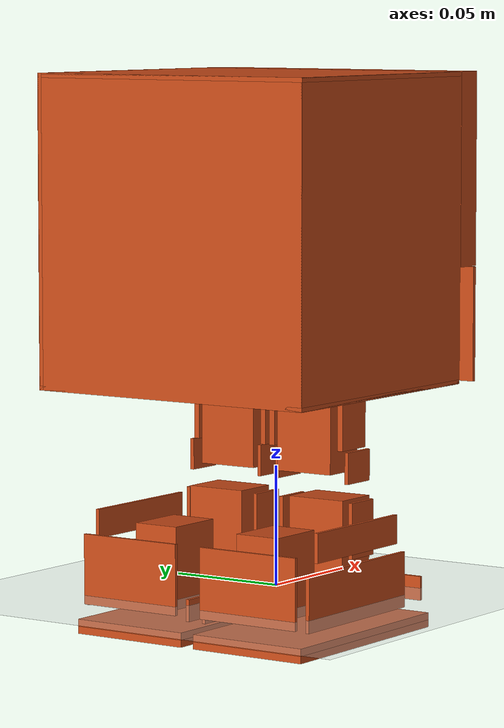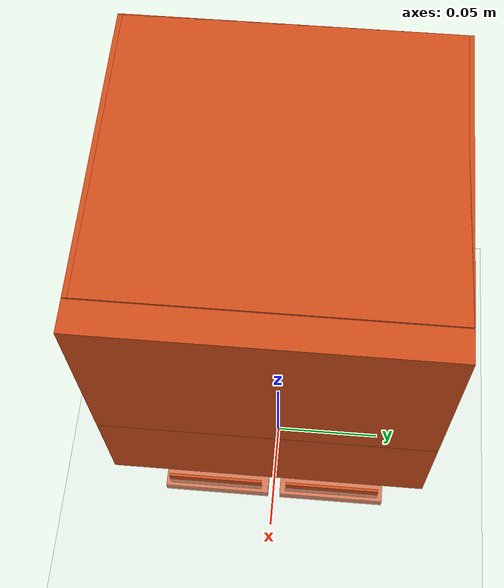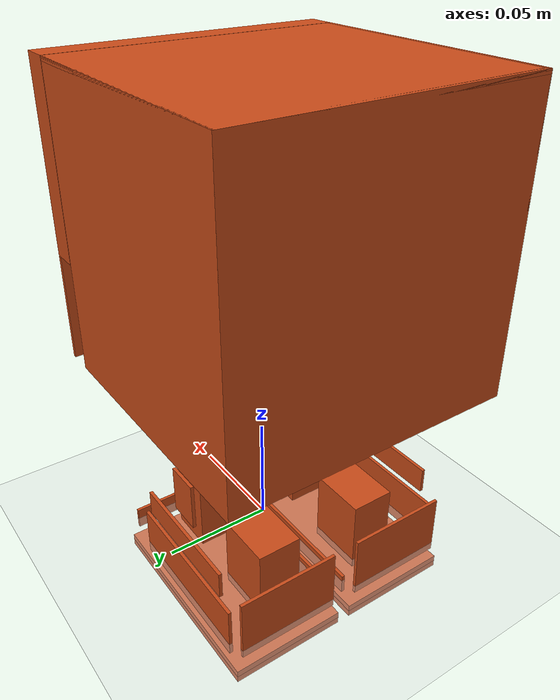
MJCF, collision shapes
<?xml version='1.0' encoding='utf-8'?>
<mujoco model="Tab5_R5_A_landscape_cube_X330_10DOF">
  <!--UNVALIDATED PHYSICS MODEL. Floating base; no weld, no root-force assistance.-->
  <!--Reduced separated collision proxies: not exact CAD shell surfaces. See collision_proxies.py. No boot is represented as a solid convex hull.-->
  <compiler angle="radian" meshdir="meshes" inertiafromgeom="false" autolimits="true" />
  <option timestep="0.001" gravity="0 0 -9.81" integrator="implicitfast" solver="Newton" iterations="50" cone="elliptic">
    <flag filterparent="enable" />
  </option>
  <visual>
    <global offwidth="1280" offheight="960" />
    <headlight diffuse=".7 .7 .7" ambient=".3 .3 .3" />
  </visual>
  <statistic center="0 0 .15" extent=".55" />
  <default>
    <default class="joint_defaults">
      <joint type="hinge" limited="true" damping="0.0015" frictionloss="0.006" armature="2e-06" />
    </default>
    <default class="collision">
      <geom contype="1" conaffinity="1" condim="3" group="3" rgba=".8 .3 .1 .35" friction="0.8 .003 .0001" solref=".004 1" solimp=".95 .99 .001" margin="0" mass="0" />
    </default>
  </default>
  <asset>
    <mesh name="body_shroud_mesh" file="body_shroud.stl" scale=".001 .001 .001" />
    <mesh name="rear_cover_mesh" file="rear_cover.stl" scale=".001 .001 .001" />
    <mesh name="Tab5_mesh" file="Tab5.stl" scale=".001 .001 .001" />
    <mesh name="face_0_mesh" file="face_0.stl" scale=".001 .001 .001" />
    <mesh name="face_1_mesh" file="face_1.stl" scale=".001 .001 .001" />
    <mesh name="face_2_mesh" file="face_2.stl" scale=".001 .001 .001" />
    <mesh name="screen_mesh" file="screen.stl" scale=".001 .001 .001" />
    <mesh name="camera_mesh" file="camera.stl" scale=".001 .001 .001" />
    <mesh name="battery_2S_reservation_mesh" file="battery_2S_reservation.stl" scale=".001 .001 .001" />
    <mesh name="dedicated_5V_converter_mesh" file="dedicated_5V_converter.stl" scale=".001 .001 .001" />
    <mesh name="TTL_interface_mesh" file="TTL_interface.stl" scale=".001 .001 .001" />
    <mesh name="cables_and_fasteners_mesh" file="cables_and_fasteners.stl" scale=".001 .001 .001" />
    <mesh name="left_hip_roll_motor_mesh" file="left_hip_roll_motor.stl" scale=".001 .001 .001" />
    <mesh name="left_fixed_roll_cradle_mesh" file="left_fixed_roll_cradle.stl" scale=".001 .001 .001" />
    <mesh name="left_roll_to_pitch_carrier_mesh" file="left_roll_to_pitch_carrier.stl" scale=".001 .001 .001" />
    <mesh name="left_hip_pitch_motor_mesh" file="left_hip_pitch_motor.stl" scale=".001 .001 .001" />
    <mesh name="left_thigh_yoke_mesh" file="left_thigh_yoke.stl" scale=".001 .001 .001" />
    <mesh name="left_knee_motor_mesh" file="left_knee_motor.stl" scale=".001 .001 .001" />
    <mesh name="left_shin_yoke_mesh" file="left_shin_yoke.stl" scale=".001 .001 .001" />
    <mesh name="left_ankle_pitch_motor_mesh" file="left_ankle_pitch_motor.stl" scale=".001 .001 .001" />
    <mesh name="left_ankle_roll_motor_mesh" file="left_ankle_roll_motor.stl" scale=".001 .001 .001" />
    <mesh name="left_ankle_gimbal_mesh" file="left_ankle_gimbal.stl" scale=".001 .001 .001" />
    <mesh name="left_foot_yoke_mesh" file="left_foot_yoke.stl" scale=".001 .001 .001" />
    <mesh name="left_boot_shell_mesh" file="left_boot_shell.stl" scale=".001 .001 .001" />
    <mesh name="left_sole_TPU_mesh" file="left_sole_TPU.stl" scale=".001 .001 .001" />
    <mesh name="right_hip_roll_motor_mesh" file="right_hip_roll_motor.stl" scale=".001 .001 .001" />
    <mesh name="right_fixed_roll_cradle_mesh" file="right_fixed_roll_cradle.stl" scale=".001 .001 .001" />
    <mesh name="right_roll_to_pitch_carrier_mesh" file="right_roll_to_pitch_carrier.stl" scale=".001 .001 .001" />
    <mesh name="right_hip_pitch_motor_mesh" file="right_hip_pitch_motor.stl" scale=".001 .001 .001" />
    <mesh name="right_thigh_yoke_mesh" file="right_thigh_yoke.stl" scale=".001 .001 .001" />
    <mesh name="right_knee_motor_mesh" file="right_knee_motor.stl" scale=".001 .001 .001" />
    <mesh name="right_shin_yoke_mesh" file="right_shin_yoke.stl" scale=".001 .001 .001" />
    <mesh name="right_ankle_pitch_motor_mesh" file="right_ankle_pitch_motor.stl" scale=".001 .001 .001" />
    <mesh name="right_ankle_roll_motor_mesh" file="right_ankle_roll_motor.stl" scale=".001 .001 .001" />
    <mesh name="right_ankle_gimbal_mesh" file="right_ankle_gimbal.stl" scale=".001 .001 .001" />
    <mesh name="right_foot_yoke_mesh" file="right_foot_yoke.stl" scale=".001 .001 .001" />
    <mesh name="right_boot_shell_mesh" file="right_boot_shell.stl" scale=".001 .001 .001" />
    <mesh name="right_sole_TPU_mesh" file="right_sole_TPU.stl" scale=".001 .001 .001" />
  </asset>
  <worldbody>
    <light pos=".3 -.4 1" dir="-.2 .2 -1" directional="true" />
    <geom name="floor" type="plane" size="2 2 .05" rgba=".89 .91 .92 1" friction="0.8 .003 .0001" condim="3" />
    <body name="base" pos="-0.011816583187 -9.18385893789e-06 0.0845815478015">
      <freejoint name="floating_base" />
      <body name="left_hip_roll" pos="-0.006 0.019 0.025">
        <joint name="left_hip_roll" axis="1 0 0" range="-0.28 0.28" class="joint_defaults" />
        <body name="left_hip_pitch" pos="0.02 0 0">
          <joint name="left_hip_pitch" axis="0 1 0" range="0.1 1.35" class="joint_defaults" />
          <body name="left_knee" pos="0 0 -0.05">
            <joint name="left_knee" axis="0 1 0" range="-1.95 -0.35" class="joint_defaults" />
            <body name="left_ankle_pitch" pos="0 0.006 -0.044">
              <joint name="left_ankle_pitch" axis="0 1 0" range="0.05 1.35" class="joint_defaults" />
              <body name="left_ankle_roll" pos="-0.026 0 -0.01">
                <joint name="left_ankle_roll" axis="1 0 0" range="-0.28 0.28" class="joint_defaults" />
                <site name="left_sole" type="box" pos="0.008 0.004 -0.022" size="0.047 0.026 0.0005" rgba="0 .7 .5 .25" group="4" />
                <inertial mass="0.06710168920947454" pos="0.00604340071633 0.00671422678767 -0.00744313920121" fullinertia="3.77056467254e-05 8.12863322653e-05 8.39357306847e-05 -1.83837919617e-07 3.21016254085e-06 -4.95972189723e-06" />
                <geom name="vis_left_foot_yoke" type="mesh" mesh="left_foot_yoke_mesh" rgba="0.28 0.34 0.36 1" contype="0" conaffinity="0" group="2" mass="0" />
                <geom name="col_left_foot_yoke_0" type="box" pos="0.008 0.004 -0.0175" size="0.047 0.026 0.0015" class="collision" />
                <geom name="vis_left_boot_shell" type="mesh" mesh="left_boot_shell_mesh" rgba="0.77 0.81 0.8 1" contype="0" conaffinity="0" group="2" mass="0" />
                <geom name="col_left_boot_shell_0" type="box" pos="0.002 0.029 0.0005" size="0.035 0.00075 0.0115" class="collision" />
                <geom name="col_left_boot_shell_1" type="box" pos="0.002 0.029 0.022" size="0.029 0.00075 0.006" class="collision" />
                <geom name="col_left_boot_shell_2" type="box" pos="0.002 -0.021 -0.008" size="0.035 0.00075 0.0045" class="collision" />
                <geom name="col_left_boot_shell_3" type="box" pos="0.054 0.004 -0.006" size="0.0007 0.023 0.005" class="collision" />
                <geom name="col_left_boot_shell_4" type="box" pos="-0.038 0.004 0.005" size="0.0007 0.023 0.0145" class="collision" />
                <geom name="vis_left_sole_TPU" type="mesh" mesh="left_sole_TPU_mesh" rgba="0.12 0.16 0.17 1" contype="0" conaffinity="0" group="2" mass="0" />
                <geom name="col_left_sole_TPU_0" type="box" pos="0.008 0.004 -0.0205" size="0.047 0.026 0.0015" class="collision" />
              </body>
              <inertial mass="0.023056416624148608" pos="-0.0366859618139 0.000427647217598 -0.00147546830583" fullinertia="4.27500089639e-06 6.41586851312e-06 5.73084345969e-06 -8.12227403335e-08 -2.22909751159e-07 -5.61061082591e-08" />
              <geom name="vis_left_ankle_roll_motor" type="mesh" mesh="left_ankle_roll_motor_mesh" rgba="0.11 0.16 0.18 1" contype="0" conaffinity="0" group="2" mass="0" />
              <geom name="col_left_ankle_roll_motor_0" type="box" pos="-0.039 0 -0.003" size="0.013 0.01 0.017" class="collision" />
              <geom name="vis_left_ankle_gimbal" type="mesh" mesh="left_ankle_gimbal_mesh" rgba="0.28 0.34 0.36 1" contype="0" conaffinity="0" group="2" mass="0" />
            </body>
            <inertial mass="0.023410050940515598" pos="0.000313662993956 0.00543197786853 -0.033360828316" fullinertia="7.08475817807e-06 5.35809447257e-06 3.38258281263e-06 2.11649184842e-08 -1.49501336436e-07 2.47803892639e-07" />
            <geom name="vis_left_shin_yoke" type="mesh" mesh="left_shin_yoke_mesh" rgba="0.28 0.34 0.36 1" contype="0" conaffinity="0" group="2" mass="0" />
            <geom name="col_left_shin_yoke_0" type="box" pos="0 -0.0145 -0.007" size="0.008 0.0008 0.0065" class="collision" />
            <geom name="col_left_shin_yoke_1" type="box" pos="0 0.0196 -0.007" size="0.008 0.0008 0.0065" class="collision" />
            <geom name="col_left_shin_yoke_2" type="box" pos="0 -0.0125 -0.0325" size="0.008 0.0008 0.0115" class="collision" />
            <geom name="col_left_shin_yoke_3" type="box" pos="0 0.0216 -0.0325" size="0.008 0.0008 0.0115" class="collision" />
            <geom name="vis_left_ankle_pitch_motor" type="mesh" mesh="left_ankle_pitch_motor_mesh" rgba="0.11 0.16 0.18 1" contype="0" conaffinity="0" group="2" mass="0" />
            <geom name="col_left_ankle_pitch_motor_0" type="box" pos="0 0.006 -0.037" size="0.01 0.013 0.017" class="collision" />
          </body>
          <inertial mass="0.029755038566515592" pos="0.000250241719007 -2.15668886457e-16 -0.0390217669833" fullinertia="9.6777213965e-06 7.55996851597e-06 4.19232559917e-06 2.64808768259e-21 -8.57905239126e-08 8.27971672693e-20" />
          <geom name="vis_left_thigh_yoke" type="mesh" mesh="left_thigh_yoke_mesh" rgba="0.28 0.34 0.36 1" contype="0" conaffinity="0" group="2" mass="0" />
          <geom name="col_left_thigh_yoke_0" type="box" pos="0 -0.0168 -0.025" size="0.0085 0.0012 0.025" class="collision" />
          <geom name="col_left_thigh_yoke_1" type="box" pos="0 0.0168 -0.025" size="0.0085 0.0012 0.025" class="collision" />
          <geom name="vis_left_knee_motor" type="mesh" mesh="left_knee_motor_mesh" rgba="0.11 0.16 0.18 1" contype="0" conaffinity="0" group="2" mass="0" />
          <geom name="col_left_knee_motor_0" type="box" pos="0 0 -0.043" size="0.01 0.013 0.017" class="collision" />
        </body>
        <inertial mass="0.02730210605957944" pos="0.0183199416856 1.26877268507e-19 0.00809677501526" fullinertia="5.2871922005e-06 4.51797586763e-06 3.49775984664e-06 -5.81654734088e-23 -1.00122336864e-07 -4.94891423789e-23" />
        <geom name="vis_left_roll_to_pitch_carrier" type="mesh" mesh="left_roll_to_pitch_carrier_mesh" rgba="0.28 0.34 0.36 1" contype="0" conaffinity="0" group="2" mass="0" />
        <geom name="col_left_roll_to_pitch_carrier_0" type="box" pos="0.0085 0 0.0075" size="0.001 0.0145 0.0185" class="collision" />
        <geom name="col_left_roll_to_pitch_carrier_1" type="box" pos="0.02 -0.0142 0.007" size="0.0125 0.0007 0.017" class="collision" />
        <geom name="col_left_roll_to_pitch_carrier_2" type="box" pos="0.02 0.0142 0.007" size="0.0125 0.0007 0.017" class="collision" />
        <geom name="col_left_roll_to_pitch_carrier_3" type="box" pos="0.02 0 0.0252" size="0.0095 0.0145 0.001" class="collision" />
        <geom name="vis_left_hip_pitch_motor" type="mesh" mesh="left_hip_pitch_motor_mesh" rgba="0.11 0.16 0.18 1" contype="0" conaffinity="0" group="2" mass="0" />
        <geom name="col_left_hip_pitch_motor_0" type="box" pos="0.02 0 0.007" size="0.01 0.013 0.017" class="collision" />
      </body>
      <body name="right_hip_roll" pos="-0.006 -0.019 0.025">
        <joint name="right_hip_roll" axis="1 0 0" range="-0.28 0.28" class="joint_defaults" />
        <body name="right_hip_pitch" pos="0.02 0 0">
          <joint name="right_hip_pitch" axis="0 1 0" range="0.1 1.35" class="joint_defaults" />
          <body name="right_knee" pos="0 0 -0.05">
            <joint name="right_knee" axis="0 1 0" range="-1.95 -0.35" class="joint_defaults" />
            <body name="right_ankle_pitch" pos="0 -0.006 -0.044">
              <joint name="right_ankle_pitch" axis="0 1 0" range="0.05 1.35" class="joint_defaults" />
              <body name="right_ankle_roll" pos="-0.026 0 -0.01">
                <joint name="right_ankle_roll" axis="1 0 0" range="-0.28 0.28" class="joint_defaults" />
                <site name="right_sole" type="box" pos="0.008 -0.004 -0.022" size="0.047 0.026 0.0005" rgba="0 .7 .5 .25" group="4" />
                <inertial mass="0.06710168920947443" pos="0.00604340071633 -0.00671422678767 -0.00744313920121" fullinertia="3.77056467254e-05 8.12863322653e-05 8.39357306847e-05 1.83837919617e-07 3.21016254085e-06 4.95972189723e-06" />
                <geom name="vis_right_foot_yoke" type="mesh" mesh="right_foot_yoke_mesh" rgba="0.28 0.34 0.36 1" contype="0" conaffinity="0" group="2" mass="0" />
                <geom name="col_right_foot_yoke_0" type="box" pos="0.008 -0.004 -0.0175" size="0.047 0.026 0.0015" class="collision" />
                <geom name="vis_right_boot_shell" type="mesh" mesh="right_boot_shell_mesh" rgba="0.77 0.81 0.8 1" contype="0" conaffinity="0" group="2" mass="0" />
                <geom name="col_right_boot_shell_0" type="box" pos="0.002 -0.029 0.0005" size="0.035 0.00075 0.0115" class="collision" />
                <geom name="col_right_boot_shell_1" type="box" pos="0.002 -0.029 0.022" size="0.029 0.00075 0.006" class="collision" />
                <geom name="col_right_boot_shell_2" type="box" pos="0.002 0.021 -0.008" size="0.035 0.00075 0.0045" class="collision" />
                <geom name="col_right_boot_shell_3" type="box" pos="0.054 -0.004 -0.006" size="0.0007 0.023 0.005" class="collision" />
                <geom name="col_right_boot_shell_4" type="box" pos="-0.038 -0.004 0.005" size="0.0007 0.023 0.0145" class="collision" />
                <geom name="vis_right_sole_TPU" type="mesh" mesh="right_sole_TPU_mesh" rgba="0.12 0.16 0.17 1" contype="0" conaffinity="0" group="2" mass="0" />
                <geom name="col_right_sole_TPU_0" type="box" pos="0.008 -0.004 -0.0205" size="0.047 0.026 0.0015" class="collision" />
              </body>
              <inertial mass="0.023056416624148608" pos="-0.0366859618139 -0.000427647217598 -0.00147546830583" fullinertia="4.27500089639e-06 6.41586851312e-06 5.73084345969e-06 8.12227403335e-08 -2.22909751159e-07 5.61061082591e-08" />
              <geom name="vis_right_ankle_roll_motor" type="mesh" mesh="right_ankle_roll_motor_mesh" rgba="0.11 0.16 0.18 1" contype="0" conaffinity="0" group="2" mass="0" />
              <geom name="col_right_ankle_roll_motor_0" type="box" pos="-0.039 0 -0.003" size="0.013 0.01 0.017" class="collision" />
              <geom name="vis_right_ankle_gimbal" type="mesh" mesh="right_ankle_gimbal_mesh" rgba="0.28 0.34 0.36 1" contype="0" conaffinity="0" group="2" mass="0" />
            </body>
            <inertial mass="0.023410050940515598" pos="0.000313662993956 -0.00543197786853 -0.033360828316" fullinertia="7.08475817807e-06 5.35809447257e-06 3.38258281263e-06 -2.11649184842e-08 -1.49501336436e-07 -2.47803892639e-07" />
            <geom name="vis_right_shin_yoke" type="mesh" mesh="right_shin_yoke_mesh" rgba="0.28 0.34 0.36 1" contype="0" conaffinity="0" group="2" mass="0" />
            <geom name="col_right_shin_yoke_0" type="box" pos="0 0.0145 -0.007" size="0.008 0.0008 0.0065" class="collision" />
            <geom name="col_right_shin_yoke_1" type="box" pos="0 -0.0196 -0.007" size="0.008 0.0008 0.0065" class="collision" />
            <geom name="col_right_shin_yoke_2" type="box" pos="0 0.0125 -0.0325" size="0.008 0.0008 0.0115" class="collision" />
            <geom name="col_right_shin_yoke_3" type="box" pos="0 -0.0216 -0.0325" size="0.008 0.0008 0.0115" class="collision" />
            <geom name="vis_right_ankle_pitch_motor" type="mesh" mesh="right_ankle_pitch_motor_mesh" rgba="0.11 0.16 0.18 1" contype="0" conaffinity="0" group="2" mass="0" />
            <geom name="col_right_ankle_pitch_motor_0" type="box" pos="0 -0.006 -0.037" size="0.01 0.013 0.017" class="collision" />
          </body>
          <inertial mass="0.029755038566515592" pos="0.000250241719007 -2.15668886457e-16 -0.0390217669833" fullinertia="9.6777213965e-06 7.55996851597e-06 4.19232559917e-06 2.64808768259e-21 -8.57905239126e-08 8.27971672693e-20" />
          <geom name="vis_right_thigh_yoke" type="mesh" mesh="right_thigh_yoke_mesh" rgba="0.28 0.34 0.36 1" contype="0" conaffinity="0" group="2" mass="0" />
          <geom name="col_right_thigh_yoke_0" type="box" pos="0 -0.0168 -0.025" size="0.0085 0.0012 0.025" class="collision" />
          <geom name="col_right_thigh_yoke_1" type="box" pos="0 0.0168 -0.025" size="0.0085 0.0012 0.025" class="collision" />
          <geom name="vis_right_knee_motor" type="mesh" mesh="right_knee_motor_mesh" rgba="0.11 0.16 0.18 1" contype="0" conaffinity="0" group="2" mass="0" />
          <geom name="col_right_knee_motor_0" type="box" pos="0 0 -0.043" size="0.01 0.013 0.017" class="collision" />
        </body>
        <inertial mass="0.02730210605957944" pos="0.0183199416856 1.26877268507e-19 0.00809677501526" fullinertia="5.2871922005e-06 4.51797586763e-06 3.49775984664e-06 -5.81654734088e-23 -1.00122336864e-07 -4.94891423789e-23" />
        <geom name="vis_right_roll_to_pitch_carrier" type="mesh" mesh="right_roll_to_pitch_carrier_mesh" rgba="0.28 0.34 0.36 1" contype="0" conaffinity="0" group="2" mass="0" />
        <geom name="col_right_roll_to_pitch_carrier_0" type="box" pos="0.0085 0 0.0075" size="0.001 0.0145 0.0185" class="collision" />
        <geom name="col_right_roll_to_pitch_carrier_1" type="box" pos="0.02 -0.0142 0.007" size="0.0125 0.0007 0.017" class="collision" />
        <geom name="col_right_roll_to_pitch_carrier_2" type="box" pos="0.02 0.0142 0.007" size="0.0125 0.0007 0.017" class="collision" />
        <geom name="col_right_roll_to_pitch_carrier_3" type="box" pos="0.02 0 0.0252" size="0.0095 0.0145 0.001" class="collision" />
        <geom name="vis_right_hip_pitch_motor" type="mesh" mesh="right_hip_pitch_motor_mesh" rgba="0.11 0.16 0.18 1" contype="0" conaffinity="0" group="2" mass="0" />
        <geom name="col_right_hip_pitch_motor_0" type="box" pos="0.02 0 0.007" size="0.01 0.013 0.017" class="collision" />
      </body>
      <inertial mass="0.48478809679899276" pos="0.00563838516092 1.12535396743e-05 0.0710967095222" fullinertia="0.00132572323055 0.00150615974706 0.00145746422445 -3.17598234472e-07 -0.000127948984863 -9.22375093862e-08" />
      <geom name="vis_body_shroud" type="mesh" mesh="body_shroud_mesh" rgba="0.77 0.81 0.8 1" contype="0" conaffinity="0" group="2" mass="0" />
      <geom name="col_body_shroud_0" type="box" pos="-0.0062 -0.0631 0.064" size="0.0578 0.0009 0.064" class="collision" />
      <geom name="col_body_shroud_1" type="box" pos="-0.0062 0.0631 0.064" size="0.0578 0.0009 0.064" class="collision" />
      <geom name="col_body_shroud_2" type="box" pos="-0.0062 0 0.1271" size="0.0578 0.064 0.0009" class="collision" />
      <geom name="col_body_shroud_3" type="box" pos="0.0631 0 0.0238" size="0.0009 0.064 0.0238" class="collision" />
      <geom name="col_body_shroud_4" type="box" pos="-0.0062 -0.0575 0.0009" size="0.0578 0.0065 0.0009" class="collision" />
      <geom name="col_body_shroud_5" type="box" pos="-0.0062 0.0575 0.0009" size="0.0578 0.0065 0.0009" class="collision" />
      <geom name="vis_rear_cover" type="mesh" mesh="rear_cover_mesh" rgba="0.77 0.81 0.8 1" contype="0" conaffinity="0" group="2" mass="0" />
      <geom name="col_rear_cover_0" type="box" pos="-0.0631 0 0.064" size="0.0009 0.064 0.064" class="collision" />
      <geom name="vis_Tab5" type="mesh" mesh="Tab5_mesh" rgba="0.77 0.81 0.8 1" contype="0" conaffinity="0" group="2" mass="0" />
      <geom name="col_Tab5_0" type="box" pos="0.058 0 0.088" size="0.006 0.064 0.04" class="collision" />
      <geom name="vis_face_0" type="mesh" mesh="face_0_mesh" rgba="0.94 0.98 0.96 1" contype="0" conaffinity="0" group="2" mass="0" />
      <geom name="vis_face_1" type="mesh" mesh="face_1_mesh" rgba="0.94 0.98 0.96 1" contype="0" conaffinity="0" group="2" mass="0" />
      <geom name="vis_face_2" type="mesh" mesh="face_2_mesh" rgba="0.94 0.98 0.96 1" contype="0" conaffinity="0" group="2" mass="0" />
      <geom name="vis_screen" type="mesh" mesh="screen_mesh" rgba="0.012 0.022 0.025 1" contype="0" conaffinity="0" group="2" mass="0" />
      <geom name="vis_camera" type="mesh" mesh="camera_mesh" rgba="0.012 0.022 0.025 1" contype="0" conaffinity="0" group="2" mass="0" />
      <geom name="vis_battery_2S_reservation" type="mesh" mesh="battery_2S_reservation_mesh" rgba="0.18 0.22 0.25 1" contype="0" conaffinity="0" group="2" mass="0" />
      <geom name="vis_dedicated_5V_converter" type="mesh" mesh="dedicated_5V_converter_mesh" rgba="0.08 0.35 0.26 1" contype="0" conaffinity="0" group="2" mass="0" />
      <geom name="vis_TTL_interface" type="mesh" mesh="TTL_interface_mesh" rgba="0.08 0.35 0.26 1" contype="0" conaffinity="0" group="2" mass="0" />
      <geom name="vis_cables_and_fasteners" type="mesh" mesh="cables_and_fasteners_mesh" rgba="0.08 0.35 0.26 1" contype="0" conaffinity="0" group="2" mass="0" />
      <geom name="vis_left_hip_roll_motor" type="mesh" mesh="left_hip_roll_motor_mesh" rgba="0.11 0.16 0.18 1" contype="0" conaffinity="0" group="2" mass="0" />
      <geom name="col_left_hip_roll_motor_0" type="box" pos="-0.019 0.019 0.032" size="0.013 0.01 0.017" class="collision" />
      <geom name="vis_left_fixed_roll_cradle" type="mesh" mesh="left_fixed_roll_cradle_mesh" rgba="0.28 0.34 0.36 1" contype="0" conaffinity="0" group="2" mass="0" />
      <geom name="vis_right_hip_roll_motor" type="mesh" mesh="right_hip_roll_motor_mesh" rgba="0.11 0.16 0.18 1" contype="0" conaffinity="0" group="2" mass="0" />
      <geom name="col_right_hip_roll_motor_0" type="box" pos="-0.019 -0.019 0.032" size="0.013 0.01 0.017" class="collision" />
      <geom name="vis_right_fixed_roll_cradle" type="mesh" mesh="right_fixed_roll_cradle_mesh" rgba="0.28 0.34 0.36 1" contype="0" conaffinity="0" group="2" mass="0" />
      <site name="imu" pos="0 0 .055" size=".003" rgba="0 1 1 1" group="4" />
    </body>
  </worldbody>
  <sensor>
    <gyro name="imu_gyro" site="imu" />
    <accelerometer name="imu_accel" site="imu" />
    <framequat name="base_quat" objtype="body" objname="base" />
    <jointpos name="left_hip_roll_pos" joint="left_hip_roll" />
    <jointvel name="left_hip_roll_vel" joint="left_hip_roll" />
    <jointpos name="left_hip_pitch_pos" joint="left_hip_pitch" />
    <jointvel name="left_hip_pitch_vel" joint="left_hip_pitch" />
    <jointpos name="left_knee_pos" joint="left_knee" />
    <jointvel name="left_knee_vel" joint="left_knee" />
    <jointpos name="left_ankle_pitch_pos" joint="left_ankle_pitch" />
    <jointvel name="left_ankle_pitch_vel" joint="left_ankle_pitch" />
    <jointpos name="left_ankle_roll_pos" joint="left_ankle_roll" />
    <jointvel name="left_ankle_roll_vel" joint="left_ankle_roll" />
    <jointpos name="right_hip_roll_pos" joint="right_hip_roll" />
    <jointvel name="right_hip_roll_vel" joint="right_hip_roll" />
    <jointpos name="right_hip_pitch_pos" joint="right_hip_pitch" />
    <jointvel name="right_hip_pitch_vel" joint="right_hip_pitch" />
    <jointpos name="right_knee_pos" joint="right_knee" />
    <jointvel name="right_knee_vel" joint="right_knee" />
    <jointpos name="right_ankle_pitch_pos" joint="right_ankle_pitch" />
    <jointvel name="right_ankle_pitch_vel" joint="right_ankle_pitch" />
    <jointpos name="right_ankle_roll_pos" joint="right_ankle_roll" />
    <jointvel name="right_ankle_roll_vel" joint="right_ankle_roll" />
  </sensor>
  <actuator>
    <motor name="left_hip_roll_motor" joint="left_hip_roll" gear="1" ctrllimited="true" ctrlrange="-0.45 0.45" forcelimited="true" forcerange="-0.45 0.45" />
    <motor name="left_hip_pitch_motor" joint="left_hip_pitch" gear="1" ctrllimited="true" ctrlrange="-0.26 0.26" forcelimited="true" forcerange="-0.26 0.26" />
    <motor name="left_knee_motor" joint="left_knee" gear="1" ctrllimited="true" ctrlrange="-0.45 0.45" forcelimited="true" forcerange="-0.45 0.45" />
    <motor name="left_ankle_pitch_motor" joint="left_ankle_pitch" gear="1" ctrllimited="true" ctrlrange="-0.26 0.26" forcelimited="true" forcerange="-0.26 0.26" />
    <motor name="left_ankle_roll_motor" joint="left_ankle_roll" gear="1" ctrllimited="true" ctrlrange="-0.26 0.26" forcelimited="true" forcerange="-0.26 0.26" />
    <motor name="right_hip_roll_motor" joint="right_hip_roll" gear="1" ctrllimited="true" ctrlrange="-0.45 0.45" forcelimited="true" forcerange="-0.45 0.45" />
    <motor name="right_hip_pitch_motor" joint="right_hip_pitch" gear="1" ctrllimited="true" ctrlrange="-0.26 0.26" forcelimited="true" forcerange="-0.26 0.26" />
    <motor name="right_knee_motor" joint="right_knee" gear="1" ctrllimited="true" ctrlrange="-0.45 0.45" forcelimited="true" forcerange="-0.45 0.45" />
    <motor name="right_ankle_pitch_motor" joint="right_ankle_pitch" gear="1" ctrllimited="true" ctrlrange="-0.26 0.26" forcelimited="true" forcerange="-0.26 0.26" />
    <motor name="right_ankle_roll_motor" joint="right_ankle_roll" gear="1" ctrllimited="true" ctrlrange="-0.26 0.26" forcelimited="true" forcerange="-0.26 0.26" />
  </actuator>
  <keyframe>
    <key name="home" qpos="-0.011816583187 -9.18385893789e-06 0.0845815478015 1 0 0 0 0.000104860283333 0.441524946578 -1.18540945229 0.743884505711 -0.000104860283333 0.000104861036626 0.441544930579 -1.18545733825 0.74391240767 -0.000104861036626" />
  </keyframe>
</mujoco>
